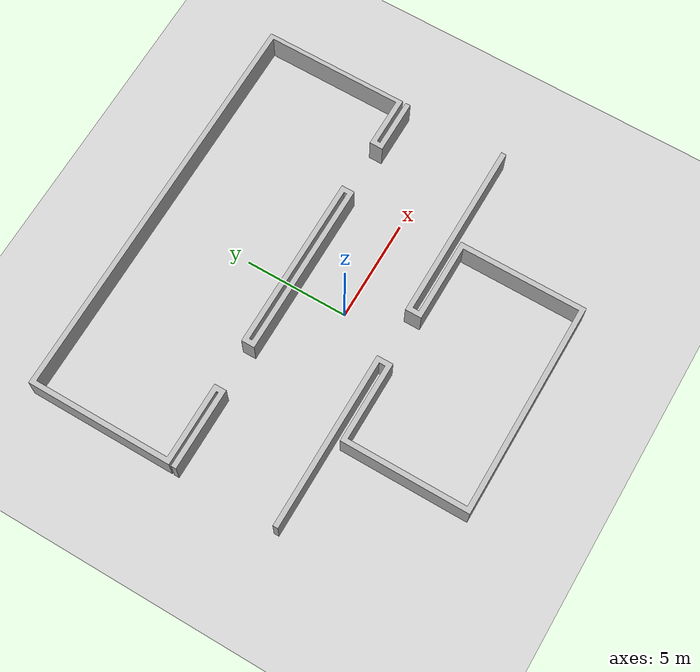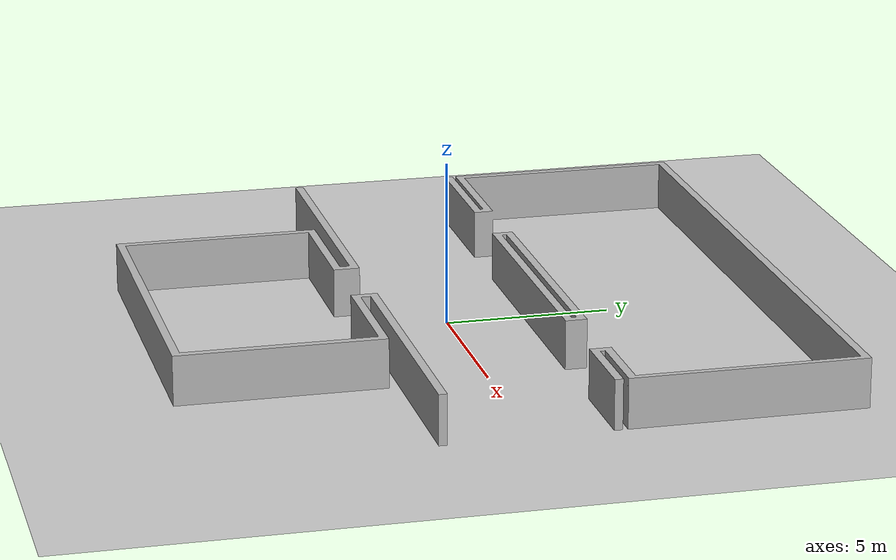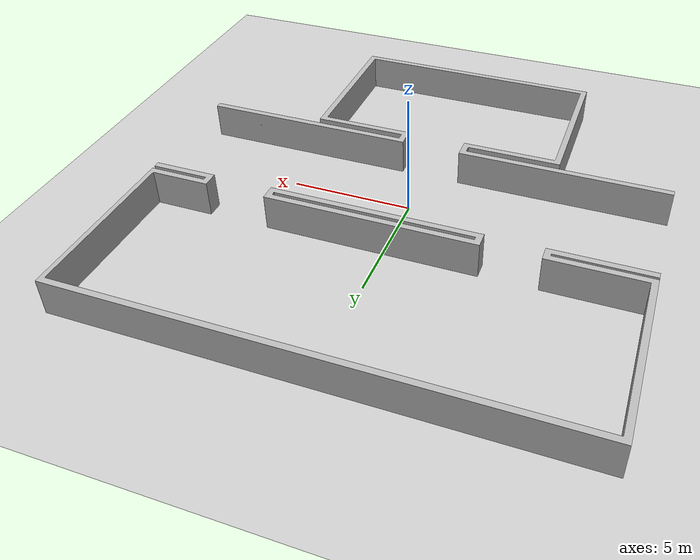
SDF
<sdf version="1.7">
 <world name="default">
  <light name="sun" type="directional">
   <pose>0 0 10 0 -0 0</pose>
   <diffuse>0.8 0.8 0.8 1</diffuse>
   <specular>0.2 0.2 0.2 1</specular>
   <attenuation>
    <range>1000</range>
    <constant>0.9</constant>
    <linear>0.01</linear>
    <quadratic>0.001</quadratic>
   </attenuation>
   <direction>-0.5 0.1 -0.9</direction>
   <spot><inner_angle>0</inner_angle><outer_angle>0</outer_angle><falloff>0</falloff></spot>
  </light>
  <model name="ground_plane">
   <static>1</static>
   <link name="link">
    <collision name="collision">
     <geometry><plane><normal>0 0 1</normal><size>100 100</size></plane></geometry>
     <surface><friction><ode><mu>100</mu><mu2>50</mu2></ode></friction></surface>
    </collision>
    <visual name="visual">
     <cast_shadows>0</cast_shadows>
     <geometry><plane><normal>0 0 1</normal><size>100 100</size></plane></geometry>
     <material>
      <script><uri>file://media/materials/scripts/gazebo.material</uri><name>Gazebo/Grey</name></script>
     </material>
    </visual>
   </link>
  </model>
  <gravity>0 0 -9.8</gravity>
  <magnetic_field>6e-06 2.3e-05 -4.2e-05</magnetic_field>
  <atmosphere type="adiabatic"/>
  <physics type="ode">
   <max_step_size>0.001</max_step_size>
   <real_time_factor>1</real_time_factor>
   <real_time_update_rate>1000</real_time_update_rate>
  </physics>
  <scene><ambient>0.4 0.4 0.4 1</ambient><background>0.7 0.7 0.7 1</background><shadows>1</shadows></scene>
  <audio><device>default</device></audio>
  <spherical_coordinates>
   <surface_model>EARTH_WGS84</surface_model>
   <latitude_deg>0</latitude_deg>
   <longitude_deg>0</longitude_deg>
   <elevation>0</elevation>
   <heading_deg>0</heading_deg>
  </spherical_coordinates>
  <model name="doors_hallway">
   <link name="link">
    <inertial>
     <mass>15</mass>
     <inertia><ixx>0</ixx><ixy>0</ixy><ixz>0</ixz><iyy>0</iyy><iyz>0</iyz><izz>0</izz></inertia>
    </inertial>
    <collision name="collision_0">
     <pose>-0.150000 -9.075000 0.750000 0 0 0</pose>
     <geometry><box><size>10.600000 0.250000 1.500000</size></box></geometry>
    </collision>
    <collision name="collision_1">
     <pose>-5.325000 -6.075000 0.750000 0 0 0</pose>
     <geometry><box><size>0.250000 5.750000 1.500000</size></box></geometry>
    </collision>
    <collision name="collision_2">
     <pose>5.025000 -6.075000 0.750000 0 0 0</pose>
     <geometry><box><size>0.250000 5.750000 1.500000</size></box></geometry>
    </collision>
    <collision name="collision_3">
     <pose>-3.400000 -3.075000 0.750000 0 0 0</pose>
     <geometry><box><size>4.100000 0.250000 1.500000</size></box></geometry>
    </collision>
    <collision name="collision_4">
     <pose>3.125000 -3.075000 0.750000 0 0 0</pose>
     <geometry><box><size>4.050000 0.250000 1.500000</size></box></geometry>
    </collision>
    <collision name="collision_5">
     <pose>-1.475000 -2.800000 0.750000 0 0 0</pose>
     <geometry><box><size>0.250000 0.300000 1.500000</size></box></geometry>
    </collision>
    <collision name="collision_6">
     <pose>1.225000 -2.800000 0.750000 0 0 0</pose>
     <geometry><box><size>0.250000 0.300000 1.500000</size></box></geometry>
    </collision>
    <collision name="collision_7">
     <pose>-5.675000 -2.525000 0.750000 0 0 0</pose>
     <geometry><box><size>8.650000 0.250000 1.500000</size></box></geometry>
    </collision>
    <collision name="collision_8">
     <pose>5.550000 -2.525000 0.750000 0 0 0</pose>
     <geometry><box><size>8.900000 0.250000 1.500000</size></box></geometry>
    </collision>
    <collision name="collision_9">
     <pose>-8.000000 2.475000 0.750000 0 0 0</pose>
     <geometry><box><size>4.000000 0.250000 1.500000</size></box></geometry>
    </collision>
    <collision name="collision_10">
     <pose>0.550000 2.475000 0.750000 0 0 0</pose>
     <geometry><box><size>8.600000 0.250000 1.500000</size></box></geometry>
    </collision>
    <collision name="collision_11">
     <pose>8.675000 2.475000 0.750000 0 0 0</pose>
     <geometry><box><size>2.650000 0.250000 1.500000</size></box></geometry>
    </collision>
    <collision name="collision_12">
     <pose>-6.125000 2.650000 0.750000 0 0 0</pose>
     <geometry><box><size>0.250000 0.100000 1.500000</size></box></geometry>
    </collision>
    <collision name="collision_13">
     <pose>-3.625000 2.675000 0.750000 0 0 0</pose>
     <geometry><box><size>0.250000 0.150000 1.500000</size></box></geometry>
    </collision>
    <collision name="collision_14">
     <pose>4.725000 2.675000 0.750000 0 0 0</pose>
     <geometry><box><size>0.250000 0.150000 1.500000</size></box></geometry>
    </collision>
    <collision name="collision_15">
     <pose>7.475000 2.675000 0.750000 0 0 0</pose>
     <geometry><box><size>0.250000 0.150000 1.500000</size></box></geometry>
    </collision>
    <collision name="collision_16">
     <pose>-8.000000 2.825000 0.750000 0 0 0</pose>
     <geometry><box><size>4.000000 0.250000 1.500000</size></box></geometry>
    </collision>
    <collision name="collision_17">
     <pose>0.550000 2.875000 0.750000 0 0 0</pose>
     <geometry><box><size>8.600000 0.250000 1.500000</size></box></geometry>
    </collision>
    <collision name="collision_18">
     <pose>8.675000 2.875000 0.750000 0 0 0</pose>
     <geometry><box><size>2.650000 0.250000 1.500000</size></box></geometry>
    </collision>
    <collision name="collision_19">
     <pose>-9.875000 6.275000 0.750000 0 0 0</pose>
     <geometry><box><size>0.250000 6.650000 1.500000</size></box></geometry>
    </collision>
    <collision name="collision_20">
     <pose>9.875000 6.300000 0.750000 0 0 0</pose>
     <geometry><box><size>0.250000 6.600000 1.500000</size></box></geometry>
    </collision>
    <collision name="collision_21">
     <pose>0.000000 9.725000 0.750000 0 0 0</pose>
     <geometry><box><size>20.000000 0.250000 1.500000</size></box></geometry>
    </collision>
    <visual name="visual">
     <geometry><mesh><uri>model://doors_hallway/meshes/doors_hallway.stl</uri></mesh></geometry>
    </visual>
   </link>
   <static>1</static>
  </model>
 </world>
</sdf>
